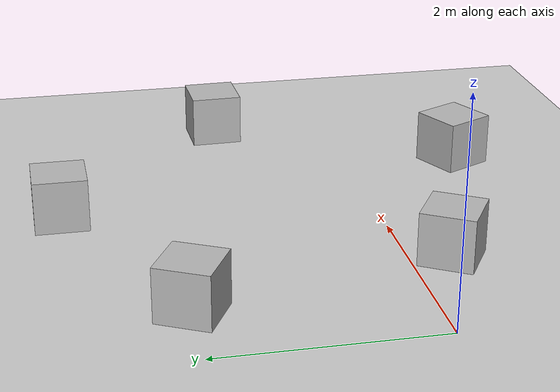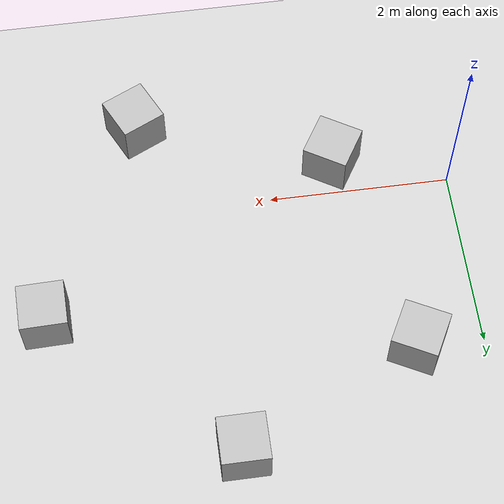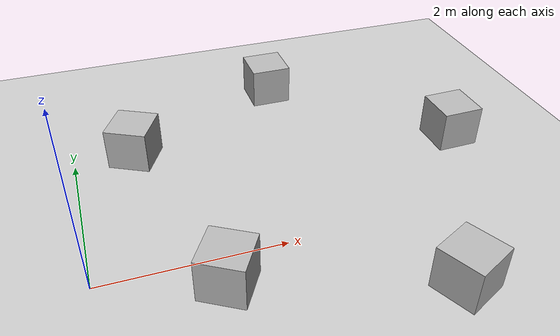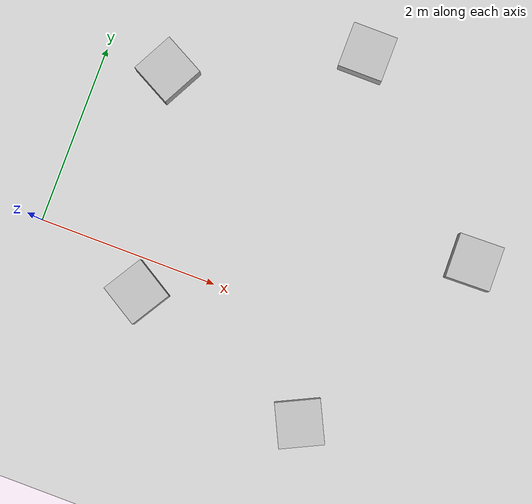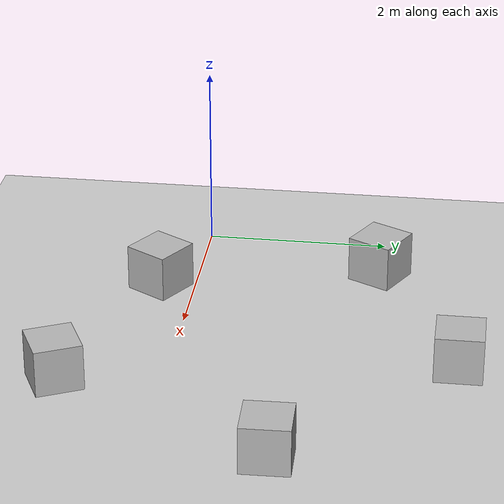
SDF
<sdf version='1.10'>
  <world name='empty'>
    <physics name='1ms' type='ignored'>
      <max_step_size>0.001</max_step_size>
      <real_time_factor>1</real_time_factor>
      <real_time_update_rate>1000</real_time_update_rate>
    </physics>
    <plugin name='gz::sim::systems::Physics' filename='gz-sim-physics-system'/>
    <plugin name='gz::sim::systems::UserCommands' filename='gz-sim-user-commands-system'/>
    <plugin name='gz::sim::systems::SceneBroadcaster' filename='gz-sim-scene-broadcaster-system'/>
    <plugin name='gz::sim::systems::Contact' filename='gz-sim-contact-system'/>
    <plugin name='gz::sim::systems::Sensors' filename='gz-sim-sensors-system'/>
    <plugin name='gz::sim::systems::Imu' filename='gz-sim-imu-system'/>
    <plugin name='gz::sim::systems::NavSat' filename='gz-sim-navsat-system'/>
    <spherical_coordinates>
      <surface_model>EARTH_WGS84</surface_model>
      <world_frame_orientation>ENU</world_frame_orientation>
      <latitude_deg>44.403373000000002</latitude_deg>
      <longitude_deg>8.9481067999999997</longitude_deg>
      <elevation>0</elevation>
      <heading_deg>0</heading_deg>
    </spherical_coordinates>
    <gravity>0 0 -9.8000000000000007</gravity>
    <magnetic_field>5.5644999999999998e-06 2.2875799999999999e-05 -4.2388400000000002e-05</magnetic_field>
    <atmosphere type='adiabatic'/>
    <scene>
      <ambient>0.400000006 0.400000006 0.400000006 1</ambient>
      <background>0.699999988 0.699999988 0.699999988 1</background>
      <shadows>true</shadows>
    </scene>
    <model name='ground_plane'>
      <static>true</static>
      <link name='link'>
        <collision name='collision'>
          <geometry>
            <plane>
              <normal>0 0 1</normal>
              <size>100 100</size>
            </plane>
          </geometry>
          <surface>
            <friction>
              <ode/>
            </friction>
            <bounce/>
            <contact/>
          </surface>
        </collision>
        <visual name='visual'>
          <geometry>
            <plane>
              <normal>0 0 1</normal>
              <size>100 100</size>
            </plane>
          </geometry>
          <material>
            <ambient>0.800000012 0.800000012 0.800000012 1</ambient>
            <diffuse>0.800000012 0.800000012 0.800000012 1</diffuse>
            <specular>0.800000012 0.800000012 0.800000012 1</specular>
          </material>
        </visual>
        <pose>0 0 0 0 0 0</pose>
        <inertial>
          <pose>0 0 0 0 0 0</pose>
          <mass>1</mass>
          <inertia>
            <ixx>1</ixx>
            <ixy>0</ixy>
            <ixz>0</ixz>
            <iyy>1</iyy>
            <iyz>0</iyz>
            <izz>1</izz>
          </inertia>
        </inertial>
        <enable_wind>false</enable_wind>
      </link>
      <pose>0 0 0 0 0 0</pose>
      <self_collide>false</self_collide>
    </model>

    <include>
      <uri>file:///home/asmar/gazebo_models/aruco_box3</uri>
      <name>aruco_box3</name>
      <pose>0.72528847158345533 1.9918505070372672 0.24999921343504655 -0.072477735754357384 1.5707934033936586 -0.55910956256916677</pose>
    </include>
    <include>
      <uri>file:///home/asmar/gazebo_models/aruco_box4</uri>
      <name>aruco_box4</name>
      <pose>3.4044969081878662 -1.0823526382446289 0.24999901156305956 9.1541910691384752e-18 -3.8362629385103968e-17 2.0225401639450986</pose>
    </include>
    <include>
      <uri>file:///home/asmar/gazebo_models/aruco_box1</uri>
      <name>aruco_box1</name>
      <pose>2.6844999790192356 2.9321398755387751 0.2499993066060659 8.0553444022835039e-07 -2.7879660481638761e-11 -2.645489871724459e-07</pose>
    </include>
    <include>
      <uri>file:///home/asmar/gazebo_models/aruco_box2</uri>
      <name>aruco_box2</name>
      <pose>4.5637645721435547 1.2106193304061892 0.24999999995712521 -2.2652092445744133e-17 -3.2238560886343e-17 1.5953502891205253</pose>
    </include>
    <include>
      <uri>file:///home/asmar/gazebo_models/aruco_box5</uri>
      <name>aruco_box5</name>
      <pose>1.26033039566924 -0.37163250162541323 0.24999919734814685 1.5707933724403291 2.4293401124087193e-07 -0.54783376894256264</pose>
    </include>
    <light name='sun' type='directional'>
      <pose>0 0 10 0 0 0</pose>
      <cast_shadows>true</cast_shadows>
      <intensity>1</intensity>
      <direction>-0.5 0.10000000000000001 -0.90000000000000002</direction>
      <diffuse>0.800000012 0.800000012 0.800000012 1</diffuse>
      <specular>0.200000003 0.200000003 0.200000003 1</specular>
      <attenuation>
        <range>1000</range>
        <linear>0.01</linear>
        <constant>0.90000000000000002</constant>
        <quadratic>0.001</quadratic>
      </attenuation>
      <spot>
        <inner_angle>0</inner_angle>
        <outer_angle>0</outer_angle>
        <falloff>0</falloff>
      </spot>
    </light>
  </world>
</sdf>

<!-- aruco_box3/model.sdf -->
<sdf version="1.5">

 <model name='aruco_box3'>
      <pose>0 0 0 0 -0 0</pose>
      <link name='link'>
        <inertial>
          <mass>1</mass>
          <inertia>
            <ixx>0.166667</ixx>
            <ixy>0</ixy>
            <ixz>0</ixz>
            <iyy>0.166667</iyy>
            <iyz>0</iyz>
            <izz>0.166667</izz>
          </inertia>
          <pose>0 0 0 0 -0 0</pose>
        </inertial>
        <collision name='collision'>
          <geometry>
            <box>
              <size>0.5 0.5 0.5</size>
            </box>
          </geometry>
          <surface>
            <contact>
              <ode/>
            </contact>
            <bounce/>
            <friction>
              <torsional>
                <ode/>
              </torsional>
              <ode/>
            </friction>
          </surface>
          <max_contacts>10</max_contacts>
        </collision>
        <visual name='aruco_box_mesh3'>
          <geometry>
            <mesh>
                <uri>model://aruco_box3/model.dae</uri>
                <scale>0.25 0.25 0.25</scale>
            </mesh>
          </geometry>
        </visual>
        <self_collide>0</self_collide>
        <enable_wind>0</enable_wind>
        <kinematic>0</kinematic>
      </link>
    </model>
    </sdf>

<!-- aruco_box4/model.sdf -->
<sdf version="1.5">

 <model name='aruco_box4'>
      <pose>0 0 0 0 -0 0</pose>
      <link name='link'>
        <inertial>
          <mass>1</mass>
          <inertia>
            <ixx>0.166667</ixx>
            <ixy>0</ixy>
            <ixz>0</ixz>
            <iyy>0.166667</iyy>
            <iyz>0</iyz>
            <izz>0.166667</izz>
          </inertia>
          <pose>0 0 0 0 -0 0</pose>
        </inertial>
        <collision name='collision'>
          <geometry>
            <box>
              <size>0.5 0.5 0.5</size>
            </box>
          </geometry>
          <surface>
            <contact>
              <ode/>
            </contact>
            <bounce/>
            <friction>
              <torsional>
                <ode/>
              </torsional>
              <ode/>
            </friction>
          </surface>
          <max_contacts>10</max_contacts>
        </collision>
        <visual name='aruco_box_mesh4'>
          <geometry>
            <mesh>
                <uri>model://aruco_box4/model.dae</uri>
                <scale>0.25 0.25 0.25</scale>
            </mesh>
          </geometry>
        </visual>
        <self_collide>0</self_collide>
        <enable_wind>0</enable_wind>
        <kinematic>0</kinematic>
      </link>
    </model>
    </sdf>

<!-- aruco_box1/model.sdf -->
<sdf version="1.5">

 <model name='aruco_box1'>
      <pose>0 0 0 0 -0 0</pose>
      <link name='link'>
        <inertial>
          <mass>1</mass>
          <inertia>
            <ixx>0.166667</ixx>
            <ixy>0</ixy>
            <ixz>0</ixz>
            <iyy>0.166667</iyy>
            <iyz>0</iyz>
            <izz>0.166667</izz>
          </inertia>
          <pose>0 0 0 0 -0 0</pose>
        </inertial>
        <collision name='collision'>
          <geometry>
            <box>
              <size>0.5 0.5 0.5</size>
            </box>
          </geometry>
          <surface>
            <contact>
              <ode/>
            </contact>
            <bounce/>
            <friction>
              <torsional>
                <ode/>
              </torsional>
              <ode/>
            </friction>
          </surface>
          <max_contacts>10</max_contacts>
        </collision>
        <visual name='aruco_box_mesh1'>
          <geometry>
            <mesh>
                <uri>model://aruco_box1/model.dae</uri>
                <scale>0.25 0.25 0.25</scale>
            </mesh>
          </geometry>
        </visual>
        <self_collide>0</self_collide>
        <enable_wind>0</enable_wind>
        <kinematic>0</kinematic>
      </link>
    </model>
    </sdf>

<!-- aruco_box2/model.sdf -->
<sdf version="1.5">

 <model name='aruco_box2'>
      <pose>0 0 0 0 -0 0</pose>
      <link name='link'>
        <inertial>
          <mass>1</mass>
          <inertia>
            <ixx>0.166667</ixx>
            <ixy>0</ixy>
            <ixz>0</ixz>
            <iyy>0.166667</iyy>
            <iyz>0</iyz>
            <izz>0.166667</izz>
          </inertia>
          <pose>0 0 0 0 -0 0</pose>
        </inertial>
        <collision name='collision'>
          <geometry>
            <box>
              <size>0.5 0.5 0.5</size>
            </box>
          </geometry>
          <surface>
            <contact>
              <ode/>
            </contact>
            <bounce/>
            <friction>
              <torsional>
                <ode/>
              </torsional>
              <ode/>
            </friction>
          </surface>
          <max_contacts>10</max_contacts>
        </collision>
        <visual name='aruco_box_mesh2'>
          <geometry>
            <mesh>
                <uri>model://aruco_box2/model.dae</uri>
                <scale>0.25 0.25 0.25</scale>
            </mesh>
          </geometry>
        </visual>
        <self_collide>0</self_collide>
        <enable_wind>0</enable_wind>
        <kinematic>0</kinematic>
      </link>
    </model>
    </sdf>

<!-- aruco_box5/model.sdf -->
<sdf version="1.5">

 <model name='aruco_box5'>
      <pose>0 0 0 0 -0 0</pose>
      <link name='link'>
        <inertial>
          <mass>1</mass>
          <inertia>
            <ixx>0.166667</ixx>
            <ixy>0</ixy>
            <ixz>0</ixz>
            <iyy>0.166667</iyy>
            <iyz>0</iyz>
            <izz>0.166667</izz>
          </inertia>
          <pose>0 0 0 0 -0 0</pose>
        </inertial>
        <collision name='collision'>
          <geometry>
            <box>
              <size>0.5 0.5 0.5</size>
            </box>
          </geometry>
          <surface>
            <contact>
              <ode/>
            </contact>
            <bounce/>
            <friction>
              <torsional>
                <ode/>
              </torsional>
              <ode/>
            </friction>
          </surface>
          <max_contacts>10</max_contacts>
        </collision>
        <visual name='aruco_box_mesh5'>
          <geometry>
            <mesh>
                <uri>model://aruco_box5/model.dae</uri>
                <scale>0.25 0.25 0.25</scale>
            </mesh>
          </geometry>
        </visual>
        <self_collide>0</self_collide>
        <enable_wind>0</enable_wind>
        <kinematic>0</kinematic>
      </link>
    </model>
    </sdf>
